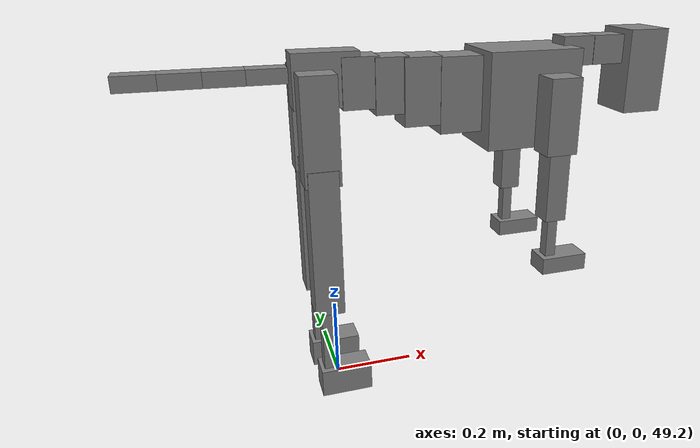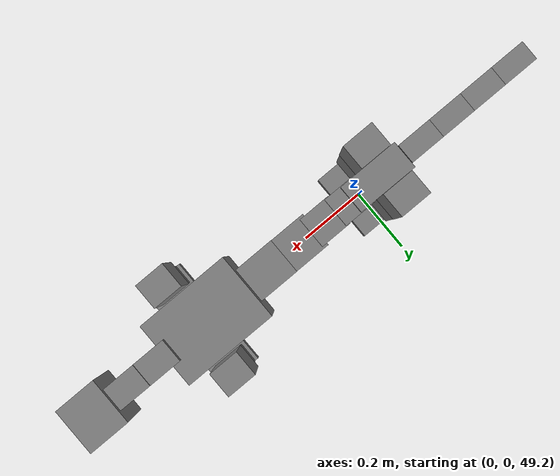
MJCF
<mujoco model="dog">

    <default>
        <joint armature="0.02" stiffness="1" damping="0.2" limited="true"/>
        <geom condim="3" friction="1 0.05 0.05" margin="0.01"/>
        <motor ctrllimited="true" ctrlrange="-1.0 1.0" forcelimited="true" gear="50"/>
    </default>

    <compiler inertiafromgeom="true" angle="radian"/>

    <option timestep="0.016" iterations="50" tolerance="1e-10" solver="Newton" jacobian="dense" cone="pyramidal"/>

    <size nconmax="20000" njmax="60000" nstack="5000000"/>
    <visual>
        <map force="0.1" zfar="30"/>
        <rgba haze="0.15 0.25 0.35 1"/>
        <quality shadowsize="2048"/>
        <global offwidth="800" offheight="800"/>
    </visual>

    <asset>
        <texture type="skybox" builtin="gradient" rgb1="0.3 0.5 0.7" rgb2="0 0 0" width="512" height="512"/>
        <texture name="texplane" type="2d" builtin="checker" rgb1=".2 .3 .4" rgb2=".1 0.15 0.2" width="512" height="512"
                 mark="cross" markrgb=".8 .8 .8"/>
        <texture name="texgeom" type="cube" builtin="flat" mark="cross" width="127" height="1278" rgb1="0.8 0.6 0.4"
                 rgb2="0.8 0.6 0.4" markrgb="1 1 1" random="0.01"/>

        <material name="matplane" reflectance="0.3" texture="texplane" texrepeat="1 1" texuniform="true"/>
        <material name="matgeom" texture="texgeom" texuniform="true" rgba="0.8 0.6 .4 1"/>
    </asset>

    <worldbody>
        <geom name="floor" pos="0 0 0" size="0 0 .25" type="plane" material="matplane" condim="3"/>

        <light directional="false" diffuse=".2 .2 .2" specular="0 0 0" pos="0 0 5" dir="0 0 -1" castshadow="false"/>
        <light mode="targetbodycom" target="torso" directional="false" diffuse=".8 .8 .8" specular="0.3 0.3 0.3"
               pos="0 0 4.0" dir="0 0 -1"/>

        <body name="root" pos="0 0 50">
            <freejoint name="root_1"/>
            <geom type="box" pos="0 0 -0.02" size="0.0774  0.0358  0.063" density="2030"/>

            <body name="spine1" pos="0.054 0 0">
                <joint name="spine1_y" axis="0 1 0" range="0 0.7" limited="true"/>
                <geom type="box" pos="0.02375 0 -0.03" size="0.04375  0.0375  0.05985" density="2030"/>

                <body name="spine2" pos="0.0612 0 0">
                    <joint name="spine2_y" axis="0 1 0" range="-0.15 0.15" limited="true"/>
                    <geom type="box" pos="0.03555  0  -0.04" size="0.04055  0.039  0.06615" density="2030"/>

                    <body name="spine3" pos="0.0730 0 0">
                        <joint name="spine3_y" axis="0 1 0" range="-0.15 0.15" limited="true"/>
                        <geom type="box" pos="0.03555  0  -0.057" size="0.04555  0.0445  0.081" density="2030"/>

                        <body name="spine4" pos="0.0780 0 0">
                            <joint name="spine4_y" axis="0 1 0" range="-0.15 0.15" limited="true"/>
                            <geom type="box" pos="0.05265  0  -0.07" size="0.05265  0.045  0.09135" density="2030"/>

                            <body name="torso" pos="0.1082 0 0">
                                <joint name="torso_y" axis="0 1 0" range="-0.15 0.15" limited="true"/>
                                <geom type="box" pos="0.11925  0  -0.085" size="0.11925  0.085  0.11745"
                                      density="2030"/>

                                <body name="neck1" pos="0.2160  0   0.0180">
                                    <joint name="neck1_y" axis="0 1 0" range="-1.2  -1" limited="true"/>
                                    <geom type="box" pos="0.0423  0  0" size="0.0423  0.03  0.036" density="2325"/>

                                    <body name="neck2" pos="0.0853  0  0">
                                        <joint name="neck2_y" axis="0 1 0" range="0.1  0" limited="true"/>
                                        <geom type="box" pos="0.0423  0  0" size="0.0423  0.03  0.036" density="2325"/>

                                        <body name="head" pos="0.0853  0  0">
                                            <joint name="head_y" axis="0 1 0" range="-0.3  -0.2" limited="true"/>
                                            <geom type="box" pos="0.0531  0  -0.055" size="0.0531  0.06  0.1044"
                                                  density="4030"/>

                                        </body>
                                    </body>
                                </body>

                                <body name="front_shoulder" pos="0.156  0   -0.0480">
                                    <joint name="front_shoulder_y" axis="0 1 0" range="-1 1.5" limited="true"/>
                                    <geom type="box" pos="0 0.13 -0.0652" size="0.0394  0.0337  0.0919" density="1158"/>
                                    <geom type="box" pos="0 -0.13 -0.0652" size="0.0394  0.0337  0.0919"
                                          density="1158"/>

                                    <body name="front_elbow" pos="0  0  -0.1304">
                                        <joint name="front_elbow_y" axis="0 1 0" range="-2 0" limited="true"/>
                                        <geom type="box" pos="0 0.13 -0.0982" size="0.0269  0.0275  0.0982"
                                              density="1081"/>
                                        <geom type="box" pos="0 -0.13 -0.0982" size="0.0269  0.0275  0.0982"
                                              density="1081"/>

                                        <body name="front_wrist" pos="0  0  -0.1965">
                                            <joint name="front_wrist_y" axis="0 1 0" range="-0.2 0" limited="true"/>
                                            <geom type="box" pos="0 0.13 -0.0574" size="0.0132  0.0146  0.0705"
                                                  density="1664"/>
                                            <geom type="box" pos="0 -0.13 -0.0574" size="0.0132  0.0146  0.0705"
                                                  density="1664"/>

                                            <body name="front_finger_end" pos="0  0  -0.1147">
                                                <joint name="front_finger_y" axis="0 1 0" range="-0.4 1"
                                                       limited="true"/>
                                                <geom type="box" pos="0.0326  0.13  -0.0058"
                                                      size="0.0598  0.0326  0.0208" density="1515"/>
                                                <geom type="box" pos="0.0326  -0.13  -0.0058"
                                                      size="0.0598  0.0326  0.0208" density="1515"/>

                                            </body>

                                        </body>
                                    </body>
                                </body>

                            </body>
                        </body>
                    </body>
                </body>
            </body>

            <body name="back_hip" pos="-0.03 0 -0.018">
                <joint name="back_hip_y" axis="0 1 0" range="-1.5 0.3" limited="true"/>
                <geom type="box" pos="0 0.07 -0.1028" size="0.0420  0.0329  0.1256" density="1154"/>
                <geom type="box" pos="0 -0.07 -0.1028" size="0.0420  0.0329  0.1256" density="1154"/>

                <body name="back_knee" pos="0  0  -0.2057">
                    <joint name="back_knee_y" axis="0 1 0" range="0 2.8" limited="true"/>
                    <geom type="box" pos="0 0.07 -0.1648" size="0.0354  0.0349  0.1804" density="1227"/>
                    <geom type="box" pos="0 -0.07 -0.1648" size="0.0354  0.0349  0.1804" density="1227"/>

                    <body name="back_ankle" pos="0  0  -0.3297">
                        <joint name="back_ankle_y" axis="0 1 0" range="-2.2 0" limited="true"/>
                        <geom type="box" pos="0 0.07 -0.0956" size="0.0190  0.0190  0.1068" density="1284"/>
                        <geom type="box" pos="0 -0.07 -0.0956" size="0.0190  0.0190  0.1068" density="1284"/>

                        <body name="back_toe_end" pos="0  0  -0.1912">
                            <joint name="back_toe_y" axis="0 1 0" range="-0.4 1" limited="true"/>
                            <geom type="box" pos="0.0342  0.07  -0.0192" size="0.0627  0.0342  0.0342" density="1515"/>
                            <geom type="box" pos="0.0342  -0.07  -0.0192" size="0.0627  0.0342  0.0342" density="1515"/>

                        </body>
                    </body>
                </body>
            </body>

            <body name="tail1" pos="-0.074 0 -0.006">
                <joint name="tail1_y" axis="0 1 0" range="-0.2 0.2" limited="true"/>
                <geom type="box" pos="-0.0536  0  0" size="0.045  0.025  0.0175" density="1587"/>

                <body name="tail2" pos="-0.09 0 0">
                    <joint name="tail2_y" axis="0 1 0" range="-0.2 0.2" limited="true"/>
                    <geom type="box" pos="-0.0536  0  0" size="0.045  0.025  0.0175" density="1587"/>

                    <body name="tail3" pos="-0.09 0 0">
                        <joint name="tail3_y" axis="0 1 0" range="-0.2 0.2" limited="true"/>
                        <geom type="box" pos="-0.0536  0  0" size="0.045  0.025  0.0175" density="1587"/>

                        <body name="tail4" pos="-0.09 0 0">
                            <joint name="tail4_y" axis="0 1 0" range="-0.2 0.2" limited="true"/>
                            <geom type="box" pos="-0.0536  0  0" size="0.045  0.025  0.0175" density="1587"/>

                        </body>
                    </body>
                </body>
            </body>
        </body>
    </worldbody>

    <actuator>
        <motor joint="spine1_y" forcerange="-150 150     "/>
        <motor joint="spine2_y" forcerange="-150 150     "/>
        <motor joint="spine3_y" forcerange="-150 150     "/>
        <motor joint="spine4_y" forcerange="-150 150     "/>
        <motor joint="torso_y" forcerange="-150 150     "/>
        <motor joint="neck1_y" forcerange="-100 100       "/>
        <motor joint="neck2_y" forcerange="-100 100       "/>
        <motor joint="head_y" forcerange="-150 150       "/>
        <motor joint="front_shoulder_y" forcerange="-152.20 172.46"/>
        <motor joint="front_elbow_y" forcerange="-166.30 133.68"/>
        <motor joint="front_wrist_y" forcerange="-52.93 64.23"/>
        <motor joint="front_finger_y" forcerange="-97.65 36.42"/>
        <motor joint="back_hip_y" forcerange="-385.96 253.15"/>
        <motor joint="back_knee_y" forcerange="-361.29 346.53"/>
        <motor joint="back_angle_y" forcerange="-69.97 133.38"/>
        <motor joint="back_toe_y" forcerange="-91.57 101.92"/>
        <motor joint="tail1_y" forcerange="-50 50     "/>
        <motor joint="tail2_y" forcerange="-50 50     "/>
        <motor joint="tail3_y" forcerange="-50 50     "/>
        <motor joint="tail4_y" forcerange="-50 50     "/>
    </actuator>
</mujoco>
